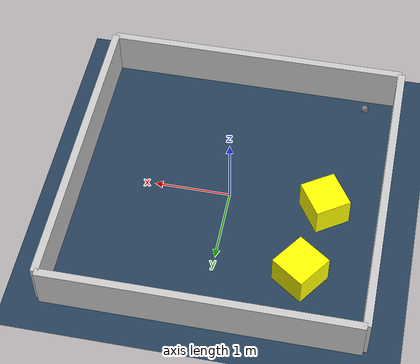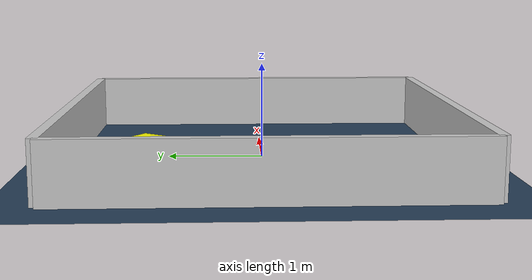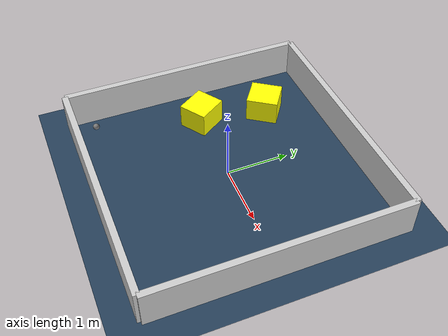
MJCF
<?xml version="1.0" ?>
<mujoco model="generated_environment">
  <option timestep="0.01" integrator="RK4" cone="elliptic"/>
  <default>
    <geom density="1"/>
  </default>
  <asset>
    <texture builtin="gradient" height="3072" rgb1="0.3 0.5 0.7" rgb2="0 0 0" type="skybox" width="512"/>
    <texture builtin="checker" height="300" mark="edge" markrgb="0.8 0.8 0.8" name="groundplane" rgb1="0.2 0.3 0.4" rgb2="0.1 0.2 0.3" type="2d" width="300"/>
    <material name="groundplane" reflectance="0.2" texrepeat="5 5" texture="groundplane" texuniform="true"/>
    <material name="robot" rgba="0.0 1.0 0.0 1"/>
  </asset>
  <worldbody>
    <light dir="0 0 -1" directional="true" pos="0 0 1.5"/>
    <geom condim="4" friction="1.0 0.005 0.001" material="groundplane" name="floor" size="0 0 0.05" type="plane"/>
    <body name="walls">
      <geom name="wall_1" condim="4" pos="-2.0 0.0 0.3" rgba="0.800000011920929 0.800000011920929 0.800000011920929 1.0" size="0.05 2.0 0.3" type="box"/>
      <geom name="wall_2" condim="4" pos="2.0 0.0 0.3" rgba="0.800000011920929 0.800000011920929 0.800000011920929 1.0" size="0.05 2.0 0.3" type="box"/>
      <geom name="wall_3" condim="4" pos="0.0 -2.0 0.3" rgba="0.800000011920929 0.800000011920929 0.800000011920929 1.0" size="2.0 0.05 0.3" type="box"/>
      <geom name="wall_4" condim="4" pos="0.0 2.0 0.3" rgba="0.800000011920929 0.800000011920929 0.800000011920929 1.0" size="2.0 0.05 0.3" type="box"/>
    </body>
    <body name="robot">
      <joint name="joint_x" type="slide" pos="0 0 0" axis="1 0 0"/>
      <joint name="joint_y" type="slide" pos="0 0 0" axis="0 1 0"/>
      <geom name="robot" type="sphere" pos="-1.5774553753703566 -1.6465023737321962 0.2" size="0.05" mass="5." friction="1.0 0.005 0.0001" condim="4"/>
      <site name="sensor_ball"/>
    </body>
    <body name="obstacle_1_movable">
      <geom name="obstacle_1_movable" condim="4" pos="-1.2537036126153716 0.04666523284923341 0.2" euler="0 0 303.06586915159636" friction="1.0 0.005 0.001" rgba="1 1 0 1" size="0.2538309287901971 0.23622095543359395 0.2" type="box" mass="0.1"/>
      <joint type="free"/>
    </body>
    <body name="obstacle_2_movable">
      <geom name="obstacle_2_movable" condim="4" pos="-1.0991550485505592 1.1095082500954083 0.2" euler="0 0 324.7985115025597" friction="1.0 0.005 0.001" rgba="1 1 0 1" size="0.24590581952862856 0.25343363073710273 0.2" type="box" mass="0.1"/>
      <joint type="free"/>
    </body>
  </worldbody>
  <actuator>
    <motor name="actuator_x" joint="joint_x" gear="1" ctrlrange="-1 1"/>
    <motor name="actuator_y" joint="joint_y" gear="1" ctrlrange="-1 1"/>
  </actuator>
</mujoco>
